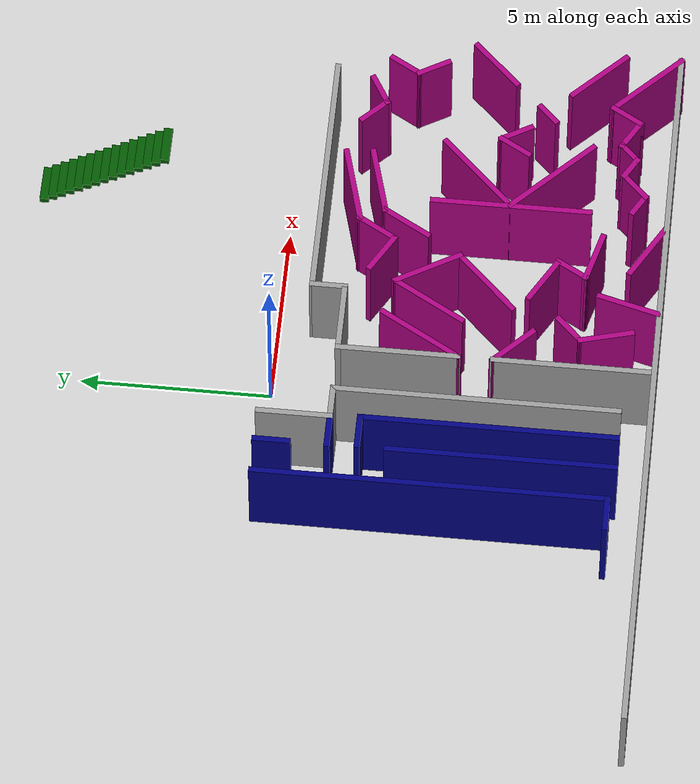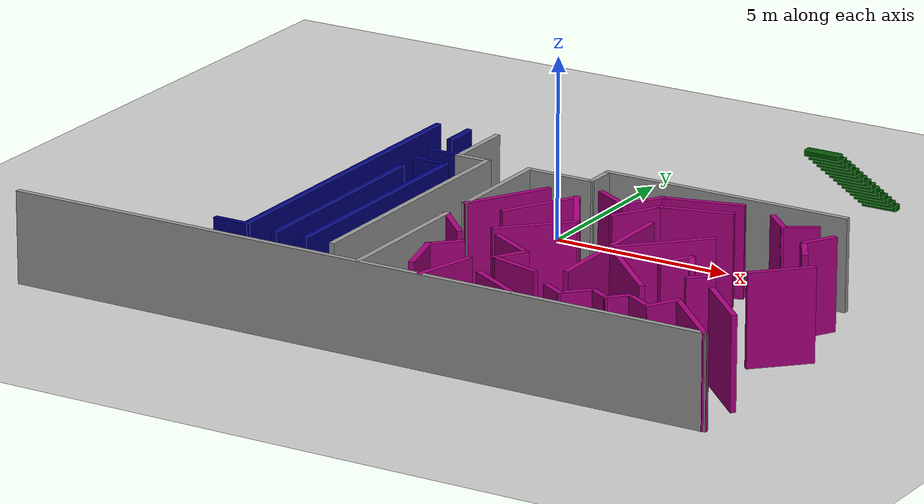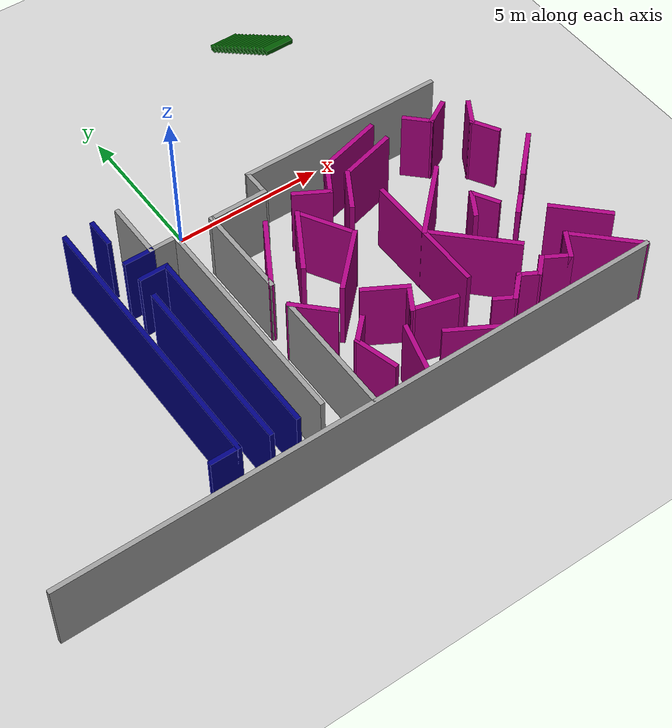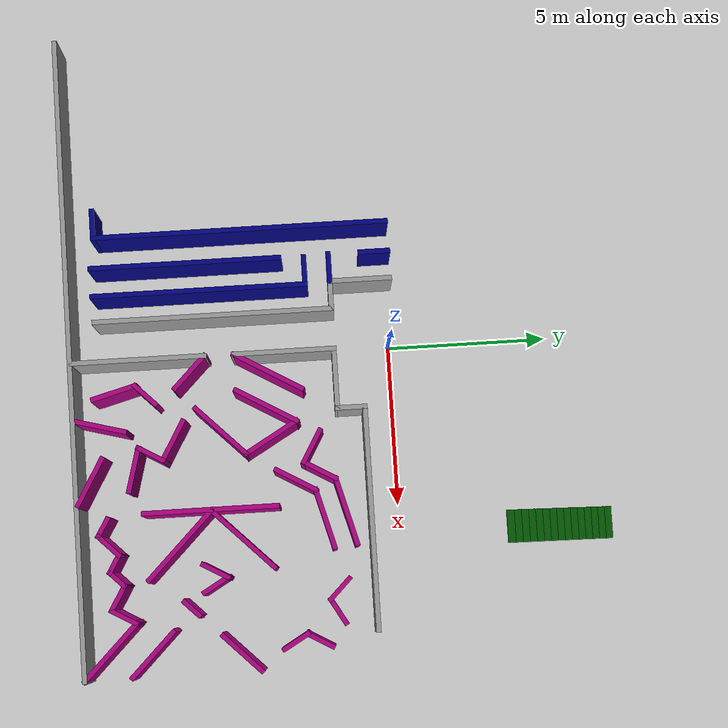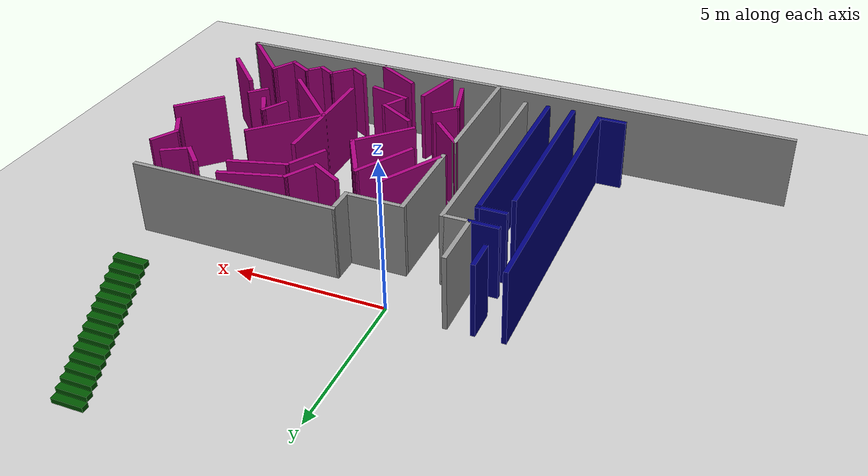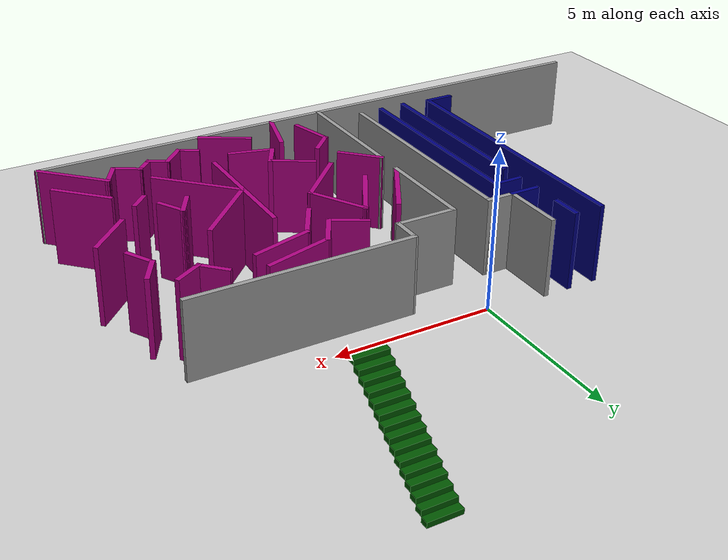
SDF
<sdf version="1.7">
 <world name="default">
  <model name="ground_plane">
   <static>1</static>
   <link name="link">
    <collision name="collision">
     <geometry><plane><normal>0 0 1</normal><size>100 100</size></plane></geometry>
     <surface><friction><ode><mu>100</mu><mu2>50</mu2></ode></friction></surface>
    </collision>
    <visual name="visual">
     <cast_shadows>0</cast_shadows>
     <geometry><plane><normal>0 0 1</normal><size>100 100</size></plane></geometry>
     <material>
      <script><uri>file://media/materials/scripts/gazebo.material</uri><name>Gazebo/Grey</name></script>
     </material>
    </visual>
   </link>
  </model>
  <model name="labyrinthe">
   <pose>-0.001061 -0.00174 0 0 -0 0</pose>
   <link name="Stairs_0">
    <visual name="Stairs_0_Visual_0">
     <pose>5.96244 6.62392 0.083333 0 -0 0</pose>
     <geometry><box><size>1 0.233333 0.166667</size></box></geometry>
     <material>
      <script><uri>file://media/materials/scripts/gazebo.material</uri><name>Gazebo/Grey</name></script>
      <ambient>0 0.333333 0 1</ambient>
     </material>
     <meta><layer>0</layer></meta>
    </visual>
    <collision name="Stairs_0_Collision_0">
     <geometry><box><size>1 0.233333 0.166667</size></box></geometry>
     <pose>5.96244 6.62392 0.083333 0 -0 0</pose>
    </collision>
    <visual name="Stairs_0_Visual_1">
     <pose>5.96244 6.39059 0.25 0 -0 0</pose>
     <geometry><box><size>1 0.233333 0.166667</size></box></geometry>
     <material>
      <script><uri>file://media/materials/scripts/gazebo.material</uri><name>Gazebo/Grey</name></script>
      <ambient>0 0.333333 0 1</ambient>
     </material>
     <meta><layer>0</layer></meta>
    </visual>
    <collision name="Stairs_0_Collision_1">
     <geometry><box><size>1 0.233333 0.166667</size></box></geometry>
     <pose>5.96244 6.39059 0.25 0 -0 0</pose>
    </collision>
    <visual name="Stairs_0_Visual_2">
     <pose>5.96244 6.15725 0.416667 0 -0 0</pose>
     <geometry><box><size>1 0.233333 0.166667</size></box></geometry>
     <material>
      <script><uri>file://media/materials/scripts/gazebo.material</uri><name>Gazebo/Grey</name></script>
      <ambient>0 0.333333 0 1</ambient>
     </material>
     <meta><layer>0</layer></meta>
    </visual>
    <collision name="Stairs_0_Collision_2">
     <geometry><box><size>1 0.233333 0.166667</size></box></geometry>
     <pose>5.96244 6.15725 0.416667 0 -0 0</pose>
    </collision>
    <visual name="Stairs_0_Visual_3">
     <pose>5.96244 5.92392 0.583333 0 -0 0</pose>
     <geometry><box><size>1 0.233333 0.166667</size></box></geometry>
     <material>
      <script><uri>file://media/materials/scripts/gazebo.material</uri><name>Gazebo/Grey</name></script>
      <ambient>0 0.333333 0 1</ambient>
     </material>
     <meta><layer>0</layer></meta>
    </visual>
    <collision name="Stairs_0_Collision_3">
     <geometry><box><size>1 0.233333 0.166667</size></box></geometry>
     <pose>5.96244 5.92392 0.583333 0 -0 0</pose>
    </collision>
    <visual name="Stairs_0_Visual_4">
     <pose>5.96244 5.69059 0.75 0 -0 0</pose>
     <geometry><box><size>1 0.233333 0.166667</size></box></geometry>
     <material>
      <script><uri>file://media/materials/scripts/gazebo.material</uri><name>Gazebo/Grey</name></script>
      <ambient>0 0.333333 0 1</ambient>
     </material>
     <meta><layer>0</layer></meta>
    </visual>
    <collision name="Stairs_0_Collision_4">
     <geometry><box><size>1 0.233333 0.166667</size></box></geometry>
     <pose>5.96244 5.69059 0.75 0 -0 0</pose>
    </collision>
    <visual name="Stairs_0_Visual_5">
     <pose>5.96244 5.45725 0.916667 0 -0 0</pose>
     <geometry><box><size>1 0.233333 0.166667</size></box></geometry>
     <material>
      <script><uri>file://media/materials/scripts/gazebo.material</uri><name>Gazebo/Grey</name></script>
      <ambient>0 0.333333 0 1</ambient>
     </material>
     <meta><layer>0</layer></meta>
    </visual>
    <collision name="Stairs_0_Collision_5">
     <geometry><box><size>1 0.233333 0.166667</size></box></geometry>
     <pose>5.96244 5.45725 0.916667 0 -0 0</pose>
    </collision>
    <visual name="Stairs_0_Visual_6">
     <pose>5.96244 5.22392 1.08333 0 -0 0</pose>
     <geometry><box><size>1 0.233333 0.166667</size></box></geometry>
     <material>
      <script><uri>file://media/materials/scripts/gazebo.material</uri><name>Gazebo/Grey</name></script>
      <ambient>0 0.333333 0 1</ambient>
     </material>
     <meta><layer>0</layer></meta>
    </visual>
    <collision name="Stairs_0_Collision_6">
     <geometry><box><size>1 0.233333 0.166667</size></box></geometry>
     <pose>5.96244 5.22392 1.08333 0 -0 0</pose>
    </collision>
    <visual name="Stairs_0_Visual_7">
     <pose>5.96244 4.99059 1.25 0 -0 0</pose>
     <geometry><box><size>1 0.233333 0.166667</size></box></geometry>
     <material>
      <script><uri>file://media/materials/scripts/gazebo.material</uri><name>Gazebo/Grey</name></script>
      <ambient>0 0.333333 0 1</ambient>
     </material>
     <meta><layer>0</layer></meta>
    </visual>
    <collision name="Stairs_0_Collision_7">
     <geometry><box><size>1 0.233333 0.166667</size></box></geometry>
     <pose>5.96244 4.99059 1.25 0 -0 0</pose>
    </collision>
    <visual name="Stairs_0_Visual_8">
     <pose>5.96244 4.75725 1.41667 0 -0 0</pose>
     <geometry><box><size>1 0.233333 0.166667</size></box></geometry>
     <material>
      <script><uri>file://media/materials/scripts/gazebo.material</uri><name>Gazebo/Grey</name></script>
      <ambient>0 0.333333 0 1</ambient>
     </material>
     <meta><layer>0</layer></meta>
    </visual>
    <collision name="Stairs_0_Collision_8">
     <geometry><box><size>1 0.233333 0.166667</size></box></geometry>
     <pose>5.96244 4.75725 1.41667 0 -0 0</pose>
    </collision>
    <visual name="Stairs_0_Visual_9">
     <pose>5.96244 4.52392 1.58333 0 -0 0</pose>
     <geometry><box><size>1 0.233333 0.166667</size></box></geometry>
     <material>
      <script><uri>file://media/materials/scripts/gazebo.material</uri><name>Gazebo/Grey</name></script>
      <ambient>0 0.333333 0 1</ambient>
     </material>
     <meta><layer>0</layer></meta>
    </visual>
    <collision name="Stairs_0_Collision_9">
     <geometry><box><size>1 0.233333 0.166667</size></box></geometry>
     <pose>5.96244 4.52392 1.58333 0 -0 0</pose>
    </collision>
    <visual name="Stairs_0_Visual_10">
     <pose>5.96244 4.29059 1.75 0 -0 0</pose>
     <geometry><box><size>1 0.233333 0.166667</size></box></geometry>
     <material>
      <script><uri>file://media/materials/scripts/gazebo.material</uri><name>Gazebo/Grey</name></script>
      <ambient>0 0.333333 0 1</ambient>
     </material>
     <meta><layer>0</layer></meta>
    </visual>
    <collision name="Stairs_0_Collision_10">
     <geometry><box><size>1 0.233333 0.166667</size></box></geometry>
     <pose>5.96244 4.29059 1.75 0 -0 0</pose>
    </collision>
    <visual name="Stairs_0_Visual_11">
     <pose>5.96244 4.05725 1.91667 0 -0 0</pose>
     <geometry><box><size>1 0.233333 0.166667</size></box></geometry>
     <material>
      <script><uri>file://media/materials/scripts/gazebo.material</uri><name>Gazebo/Grey</name></script>
      <ambient>0 0.333333 0 1</ambient>
     </material>
     <meta><layer>0</layer></meta>
    </visual>
    <collision name="Stairs_0_Collision_11">
     <geometry><box><size>1 0.233333 0.166667</size></box></geometry>
     <pose>5.96244 4.05725 1.91667 0 -0 0</pose>
    </collision>
    <visual name="Stairs_0_Visual_12">
     <pose>5.96244 3.82392 2.08333 0 -0 0</pose>
     <geometry><box><size>1 0.233333 0.166667</size></box></geometry>
     <material>
      <script><uri>file://media/materials/scripts/gazebo.material</uri><name>Gazebo/Grey</name></script>
      <ambient>0 0.333333 0 1</ambient>
     </material>
     <meta><layer>0</layer></meta>
    </visual>
    <collision name="Stairs_0_Collision_12">
     <geometry><box><size>1 0.233333 0.166667</size></box></geometry>
     <pose>5.96244 3.82392 2.08333 0 -0 0</pose>
    </collision>
    <visual name="Stairs_0_Visual_13">
     <pose>5.96244 3.59059 2.25 0 -0 0</pose>
     <geometry><box><size>1 0.233333 0.166667</size></box></geometry>
     <material>
      <script><uri>file://media/materials/scripts/gazebo.material</uri><name>Gazebo/Grey</name></script>
      <ambient>0 0.333333 0 1</ambient>
     </material>
     <meta><layer>0</layer></meta>
    </visual>
    <collision name="Stairs_0_Collision_13">
     <geometry><box><size>1 0.233333 0.166667</size></box></geometry>
     <pose>5.96244 3.59059 2.25 0 -0 0</pose>
    </collision>
    <visual name="Stairs_0_Visual_14">
     <pose>5.96244 3.35725 2.41667 0 -0 0</pose>
     <geometry><box><size>1 0.233333 0.166667</size></box></geometry>
     <material>
      <script><uri>file://media/materials/scripts/gazebo.material</uri><name>Gazebo/Grey</name></script>
      <ambient>0 0.333333 0 1</ambient>
     </material>
     <meta><layer>0</layer></meta>
    </visual>
    <collision name="Stairs_0_Collision_14">
     <geometry><box><size>1 0.233333 0.166667</size></box></geometry>
     <pose>5.96244 3.35725 2.41667 0 -0 0</pose>
    </collision>
   </link>
   <link name="Wall_124">
    <collision name="Wall_124_Collision">
     <geometry><box><size>1 0.15 2.5</size></box></geometry>
     <pose>0 0 1.25 0 -0 0</pose>
    </collision>
    <visual name="Wall_124_Visual">
     <pose>0 0 1.25 0 -0 0</pose>
     <geometry><box><size>1 0.15 2.5</size></box></geometry>
     <material>
      <script><uri>file://media/materials/scripts/gazebo.material</uri><name>Gazebo/Grey</name></script>
      <ambient>0 0 0.498039 1</ambient>
     </material>
     <meta><layer>0</layer></meta>
    </visual>
    <pose>-2.78376 -0.311268 0 0 -0 -1.5708</pose>
   </link>
   <link name="Wall_134">
    <collision name="Wall_134_Collision">
     <geometry><box><size>9.25 0.15 2.5</size></box></geometry>
     <pose>0 0 1.25 0 -0 0</pose>
    </collision>
    <visual name="Wall_134_Visual">
     <pose>0 0 1.25 0 -0 0</pose>
     <geometry><box><size>9.25 0.15 2.5</size></box></geometry>
     <material>
      <script><uri>file://media/materials/scripts/gazebo.material</uri><name>Gazebo/Grey</name></script>
      <ambient>0 0 0.498039 1</ambient>
     </material>
     <meta><layer>0</layer></meta>
    </visual>
    <pose>-3.71826 -4.45266 0 0 -0 -1.5708</pose>
   </link>
   <link name="Wall_138">
    <collision name="Wall_138_Collision">
     <geometry><box><size>1 0.15 2.5</size></box></geometry>
     <pose>0 0 1.25 0 -0 0</pose>
    </collision>
    <visual name="Wall_138_Visual">
     <pose>0 0 1.25 0 -0 0</pose>
     <geometry><box><size>1 0.15 2.5</size></box></geometry>
     <material>
      <script><uri>file://media/materials/scripts/gazebo.material</uri><name>Gazebo/Grey</name></script>
      <ambient>0 0 0.498039 1</ambient>
     </material>
     <meta><layer>0</layer></meta>
    </visual>
    <pose>-2.35877 -1.73627 0 0 -0 3.14159</pose>
   </link>
   <link name="Wall_140">
    <collision name="Wall_140_Collision">
     <geometry><box><size>1 0.15 2.5</size></box></geometry>
     <pose>0 0 1.25 0 -0 0</pose>
    </collision>
    <visual name="Wall_140_Visual">
     <pose>0 0 1.25 0 -0 0</pose>
     <geometry><box><size>1 0.15 2.5</size></box></geometry>
     <material>
      <script><uri>file://media/materials/scripts/gazebo.material</uri><name>Gazebo/Grey</name></script>
      <ambient>0 0 0.498039 1</ambient>
     </material>
     <meta><layer>0</layer></meta>
    </visual>
    <pose>-2.31461 -2.50799 0 0 -0 0</pose>
   </link>
   <link name="Wall_141">
    <collision name="Wall_141_Collision">
     <geometry><box><size>6.75 0.15 2.5</size></box></geometry>
     <pose>0 0 1.25 0 -0 0</pose>
    </collision>
    <visual name="Wall_141_Visual">
     <pose>0 0 1.25 0 -0 0</pose>
     <geometry><box><size>6.75 0.15 2.5</size></box></geometry>
     <material>
      <script><uri>file://media/materials/scripts/gazebo.material</uri><name>Gazebo/Grey</name></script>
      <ambient>0 0 0.498039 1</ambient>
     </material>
     <meta><layer>0</layer></meta>
    </visual>
    <pose>-1.88961 -5.80799 0 0 -0 -1.5708</pose>
   </link>
   <link name="Wall_143">
    <collision name="Wall_143_Collision">
     <geometry><box><size>6 0.15 2.5</size></box></geometry>
     <pose>0 0 1.25 0 -0 0</pose>
    </collision>
    <visual name="Wall_143_Visual">
     <pose>0 0 1.25 0 -0 0</pose>
     <geometry><box><size>6 0.15 2.5</size></box></geometry>
     <material>
      <script><uri>file://media/materials/scripts/gazebo.material</uri><name>Gazebo/Grey</name></script>
      <ambient>0 0 0.498039 1</ambient>
     </material>
     <meta><layer>0</layer></meta>
    </visual>
    <pose>-2.76606 -6.20004 0 0 -0 -1.5708</pose>
   </link>
   <link name="Wall_17">
    <collision name="Wall_17_Collision">
     <geometry><box><size>20 0.15 2.5</size></box></geometry>
     <pose>0 0 1.25 0 -0 0</pose>
    </collision>
    <visual name="Wall_17_Visual">
     <pose>0 0 1.25 0 -0 0</pose>
     <geometry><box><size>20 0.15 2.5</size></box></geometry>
     <material>
      <script><uri>file://media/materials/scripts/gazebo.material</uri><name>Gazebo/Grey</name></script>
      <ambient>0 0 0 1</ambient>
     </material>
     <meta><layer>0</layer></meta>
    </visual>
    <pose>-0.030043 -9.90947 0 0 -0 3.14159</pose>
   </link>
   <link name="Wall_171">
    <collision name="Wall_171_Collision">
     <geometry><box><size>1 0.15 2.5</size></box></geometry>
     <pose>0 0 1.25 0 -0 0</pose>
    </collision>
    <visual name="Wall_171_Visual">
     <pose>0 0 1.25 0 -0 0</pose>
     <geometry><box><size>1 0.15 2.5</size></box></geometry>
     <material>
      <script><uri>file://media/materials/scripts/gazebo.material</uri><name>Gazebo/Grey</name></script>
      <ambient>0 0 0.498039 1</ambient>
     </material>
     <meta><layer>0</layer></meta>
    </visual>
    <pose>-4.14326 -9.00266 0 0 -0 3.14159</pose>
   </link>
   <link name="Wall_199">
    <collision name="Wall_199_Collision">
     <geometry><box><size>3.25 0.15 2.5</size></box></geometry>
     <pose>0 0 1.25 0 -0 0</pose>
    </collision>
    <visual name="Wall_199_Visual">
     <pose>0 0 1.25 0 -0 0</pose>
     <geometry><box><size>3.25 0.15 2.5</size></box></geometry>
     <material>
      <script><uri>file://media/materials/scripts/gazebo.material</uri><name>Gazebo/Grey</name></script>
      <ambient>0 0 0 1</ambient>
     </material>
     <meta><layer>0</layer></meta>
    </visual>
    <pose>0.166235 -3.28624 0 0 -0 -1.5708</pose>
   </link>
   <link name="Wall_201">
    <collision name="Wall_201_Collision">
     <geometry><box><size>4.25 0.15 2.5</size></box></geometry>
     <pose>0 0 1.25 0 -0 0</pose>
    </collision>
    <visual name="Wall_201_Visual">
     <pose>0 0 1.25 0 -0 0</pose>
     <geometry><box><size>4.25 0.15 2.5</size></box></geometry>
     <material>
      <script><uri>file://media/materials/scripts/gazebo.material</uri><name>Gazebo/Grey</name></script>
      <ambient>0 0 0 1</ambient>
     </material>
     <meta><layer>0</layer></meta>
    </visual>
    <pose>0.156663 -7.79811 0 0 -0 -1.5708</pose>
   </link>
   <link name="Wall_203">
    <collision name="Wall_203_Collision">
     <geometry><box><size>2.5 0.15 2.5</size></box></geometry>
     <pose>0 0 1.25 0 -0 0</pose>
    </collision>
    <visual name="Wall_203_Visual">
     <pose>0 0 1.25 0 -0 0</pose>
     <geometry><box><size>2.5 0.15 2.5</size></box></geometry>
     <material>
      <script><uri>file://media/materials/scripts/gazebo.material</uri><name>Gazebo/Grey</name></script>
      <ambient>0.666667 0 0.498039 1</ambient>
     </material>
     <meta><layer>0</layer></meta>
    </visual>
    <pose>0.753735 -3.81866 0 0 -0 1.0472</pose>
   </link>
   <link name="Wall_205">
    <collision name="Wall_205_Collision">
     <geometry><box><size>1.5 0.15 2.5</size></box></geometry>
     <pose>0 0 1.25 0 -0 0</pose>
    </collision>
    <visual name="Wall_205_Visual">
     <pose>0 0 1.25 0 -0 0</pose>
     <geometry><box><size>1.5 0.15 2.5</size></box></geometry>
     <material>
      <script><uri>file://media/materials/scripts/gazebo.material</uri><name>Gazebo/Grey</name></script>
      <ambient>0.666667 0 0.498039 1</ambient>
     </material>
     <meta><layer>0</layer></meta>
    </visual>
    <pose>0.63396 -6.22541 0 0 -0 -0.785398</pose>
   </link>
   <link name="Wall_207">
    <collision name="Wall_207_Collision">
     <geometry><box><size>2.25 0.15 2.5</size></box></geometry>
     <pose>0 0 1.25 0 -0 0</pose>
    </collision>
    <visual name="Wall_207_Visual">
     <pose>0 0 1.25 0 -0 0</pose>
     <geometry><box><size>2.25 0.15 2.5</size></box></geometry>
     <material>
      <script><uri>file://media/materials/scripts/gazebo.material</uri><name>Gazebo/Grey</name></script>
      <ambient>0.666667 0 0.498039 1</ambient>
     </material>
     <meta><layer>0</layer></meta>
    </visual>
    <pose>1.80579 -3.92626 0 0 -0 1.0472</pose>
   </link>
   <link name="Wall_208">
    <collision name="Wall_208_Collision">
     <geometry><box><size>2 0.15 2.5</size></box></geometry>
     <pose>0 0 1.25 0 -0 0</pose>
    </collision>
    <visual name="Wall_208_Visual">
     <pose>0 0 1.25 0 -0 0</pose>
     <geometry><box><size>2 0.15 2.5</size></box></geometry>
     <material>
      <script><uri>file://media/materials/scripts/gazebo.material</uri><name>Gazebo/Grey</name></script>
      <ambient>0.666667 0 0.498039 1</ambient>
     </material>
     <meta><layer>0</layer></meta>
    </visual>
    <pose>2.79329 -3.81801 0 0 -0 -1.0472</pose>
   </link>
   <link name="Wall_209">
    <collision name="Wall_209_Collision">
     <geometry><box><size>2.25 0.15 2.5</size></box></geometry>
     <pose>0 0 1.25 0 -0 0</pose>
    </collision>
    <visual name="Wall_209_Visual">
     <pose>0 0 1.25 0 -0 0</pose>
     <geometry><box><size>2.25 0.15 2.5</size></box></geometry>
     <material>
      <script><uri>file://media/materials/scripts/gazebo.material</uri><name>Gazebo/Grey</name></script>
      <ambient>0.666667 0 0.498039 1</ambient>
     </material>
     <meta><layer>0</layer></meta>
    </visual>
    <pose>2.51333 -5.36154 0 0 -0 -2.35619</pose>
   </link>
   <link name="Wall_211">
    <collision name="Wall_211_Collision">
     <geometry><box><size>1.25 0.15 2.5</size></box></geometry>
     <pose>0 0 1.25 0 -0 0</pose>
    </collision>
    <visual name="Wall_211_Visual">
     <pose>0 0 1.25 0 -0 0</pose>
     <geometry><box><size>1.25 0.15 2.5</size></box></geometry>
     <material>
      <script><uri>file://media/materials/scripts/gazebo.material</uri><name>Gazebo/Grey</name></script>
      <ambient>0.666667 0 0.498039 1</ambient>
     </material>
     <meta><layer>0</layer></meta>
    </visual>
    <pose>3.14573 -2.59784 0 0 -0 -0.523599</pose>
   </link>
   <link name="Wall_212">
    <collision name="Wall_212_Collision">
     <geometry><box><size>1.25 0.15 2.5</size></box></geometry>
     <pose>0 0 1.25 0 -0 0</pose>
    </collision>
    <visual name="Wall_212_Visual">
     <pose>0 0 1.25 0 -0 0</pose>
     <geometry><box><size>1.25 0.15 2.5</size></box></geometry>
     <material>
      <script><uri>file://media/materials/scripts/gazebo.material</uri><name>Gazebo/Grey</name></script>
      <ambient>0.666667 0 0.498039 1</ambient>
     </material>
     <meta><layer>0</layer></meta>
    </visual>
    <pose>3.89704 -2.39652 0 0 -0 1.0472</pose>
   </link>
   <link name="Wall_213">
    <collision name="Wall_213_Collision">
     <geometry><box><size>2.25 0.15 2.5</size></box></geometry>
     <pose>0 0 1.25 0 -0 0</pose>
    </collision>
    <visual name="Wall_213_Visual">
     <pose>0 0 1.25 0 -0 0</pose>
     <geometry><box><size>2.25 0.15 2.5</size></box></geometry>
     <material>
      <script><uri>file://media/materials/scripts/gazebo.material</uri><name>Gazebo/Grey</name></script>
      <ambient>0.666667 0 0.498039 1</ambient>
     </material>
     <meta><layer>0</layer></meta>
    </visual>
    <pose>5.18626 -1.64845 0 0 -0 0.261799</pose>
   </link>
   <link name="Wall_215">
    <collision name="Wall_215_Collision">
     <geometry><box><size>1.5 0.15 2.5</size></box></geometry>
     <pose>0 0 1.25 0 -0 0</pose>
    </collision>
    <visual name="Wall_215_Visual">
     <pose>0 0 1.25 0 -0 0</pose>
     <geometry><box><size>1.5 0.15 2.5</size></box></geometry>
     <material>
      <script><uri>file://media/materials/scripts/gazebo.material</uri><name>Gazebo/Grey</name></script>
      <ambient>0.666667 0 0.498039 1</ambient>
     </material>
     <meta><layer>0</layer></meta>
    </visual>
    <pose>4.14426 -3.14012 0 0 -0 1.0472</pose>
   </link>
   <link name="Wall_216">
    <collision name="Wall_216_Collision">
     <geometry><box><size>2 0.15 2.5</size></box></geometry>
     <pose>0 0 1.25 0 -0 0</pose>
    </collision>
    <visual name="Wall_216_Visual">
     <pose>0 0 1.25 0 -0 0</pose>
     <geometry><box><size>2 0.15 2.5</size></box></geometry>
     <material>
      <script><uri>file://media/materials/scripts/gazebo.material</uri><name>Gazebo/Grey</name></script>
      <ambient>0.666667 0 0.498039 1</ambient>
     </material>
     <meta><layer>0</layer></meta>
    </visual>
    <pose>5.37524 -2.31615 0 0 -0 0.261799</pose>
   </link>
   <link name="Wall_218">
    <collision name="Wall_218_Collision">
     <geometry><box><size>1 0.15 2.5</size></box></geometry>
     <pose>0 0 1.25 0 -0 0</pose>
    </collision>
    <visual name="Wall_218_Visual">
     <pose>0 0 1.25 0 -0 0</pose>
     <geometry><box><size>1 0.15 2.5</size></box></geometry>
     <material>
      <script><uri>file://media/materials/scripts/gazebo.material</uri><name>Gazebo/Grey</name></script>
      <ambient>0.666667 0 0.498039 1</ambient>
     </material>
     <meta><layer>0</layer></meta>
    </visual>
    <pose>7.55901 -1.98856 0 0 -0 -0.785398</pose>
   </link>
   <link name="Wall_219">
    <collision name="Wall_219_Collision">
     <geometry><box><size>1 0.15 2.5</size></box></geometry>
     <pose>0 0 1.25 0 -0 0</pose>
    </collision>
    <visual name="Wall_219_Visual">
     <pose>0 0 1.25 0 -0 0</pose>
     <geometry><box><size>1 0.15 2.5</size></box></geometry>
     <material>
      <script><uri>file://media/materials/scripts/gazebo.material</uri><name>Gazebo/Grey</name></script>
      <ambient>0.666667 0 0.498039 1</ambient>
     </material>
     <meta><layer>0</layer></meta>
    </visual>
    <pose>8.22759 -2.07658 0 0 -0 0.523599</pose>
   </link>
   <link name="Wall_221">
    <collision name="Wall_221_Collision">
     <geometry><box><size>1 0.15 2.5</size></box></geometry>
     <pose>0 0 1.25 0 -0 0</pose>
    </collision>
    <visual name="Wall_221_Visual">
     <pose>0 0 1.25 0 -0 0</pose>
     <geometry><box><size>1 0.15 2.5</size></box></geometry>
     <material>
      <script><uri>file://media/materials/scripts/gazebo.material</uri><name>Gazebo/Grey</name></script>
      <ambient>0.666667 0 0.498039 1</ambient>
     </material>
     <meta><layer>0</layer></meta>
    </visual>
    <pose>9.06941 -2.67767 0 0 -0 -2.0944</pose>
   </link>
   <link name="Wall_222">
    <collision name="Wall_222_Collision">
     <geometry><box><size>1 0.15 2.5</size></box></geometry>
     <pose>0 0 1.25 0 -0 0</pose>
    </collision>
    <visual name="Wall_222_Visual">
     <pose>0 0 1.25 0 -0 0</pose>
     <geometry><box><size>1 0.15 2.5</size></box></geometry>
     <material>
      <script><uri>file://media/materials/scripts/gazebo.material</uri><name>Gazebo/Grey</name></script>
      <ambient>0.666667 0 0.498039 1</ambient>
     </material>
     <meta><layer>0</layer></meta>
    </visual>
    <pose>9.06941 -3.41379 0 0 -0 -1.0472</pose>
   </link>
   <link name="Wall_224">
    <collision name="Wall_224_Collision">
     <geometry><box><size>1.5 0.15 2.5</size></box></geometry>
     <pose>0 0 1.25 0 -0 0</pose>
    </collision>
    <visual name="Wall_224_Visual">
     <pose>0 0 1.25 0 -0 0</pose>
     <geometry><box><size>1.5 0.15 2.5</size></box></geometry>
     <material>
      <script><uri>file://media/materials/scripts/gazebo.material</uri><name>Gazebo/Grey</name></script>
      <ambient>0.666667 0 0.498039 1</ambient>
     </material>
     <meta><layer>0</layer></meta>
    </visual>
    <pose>2.72498 -6.85266 0 0 -0 -0.523599</pose>
   </link>
   <link name="Wall_225">
    <collision name="Wall_225_Collision">
     <geometry><box><size>1 0.15 2.5</size></box></geometry>
     <pose>0 0 1.25 0 -0 0</pose>
    </collision>
    <visual name="Wall_225_Visual">
     <pose>0 0 1.25 0 -0 0</pose>
     <geometry><box><size>1 0.15 2.5</size></box></geometry>
     <material>
      <script><uri>file://media/materials/scripts/gazebo.material</uri><name>Gazebo/Grey</name></script>
      <ambient>0.666667 0 0.498039 1</ambient>
     </material>
     <meta><layer>0</layer></meta>
    </visual>
    <pose>3.09705 -7.55822 0 0 -0 -2.0944</pose>
   </link>
   <link name="Wall_226">
    <collision name="Wall_226_Collision">
     <geometry><box><size>1.5 0.15 2.5</size></box></geometry>
     <pose>0 0 1.25 0 -0 0</pose>
    </collision>
    <visual name="Wall_226_Visual">
     <pose>0 0 1.25 0 -0 0</pose>
     <geometry><box><size>1.5 0.15 2.5</size></box></geometry>
     <material>
      <script><uri>file://media/materials/scripts/gazebo.material</uri><name>Gazebo/Grey</name></script>
      <ambient>0.666667 0 0.498039 1</ambient>
     </material>
     <meta><layer>0</layer></meta>
    </visual>
    <pose>3.53655 -8.10099 0 0 -0 -0.261799</pose>
   </link>
   <link name="Wall_228">
    <collision name="Wall_228_Collision">
     <geometry><box><size>1 0.15 2.5</size></box></geometry>
     <pose>0 0 1.25 0 -0 0</pose>
    </collision>
    <visual name="Wall_228_Visual">
     <pose>0 0 1.25 0 -0 0</pose>
     <geometry><box><size>1 0.15 2.5</size></box></geometry>
     <material>
      <script><uri>file://media/materials/scripts/gazebo.material</uri><name>Gazebo/Grey</name></script>
      <ambient>0.666667 0 0.498039 1</ambient>
     </material>
     <meta><layer>0</layer></meta>
    </visual>
    <pose>1.25799 -7.63563 0 0 -0 -2.35619</pose>
   </link>
   <link name="Wall_229">
    <collision name="Wall_229_Collision">
     <geometry><box><size>1.5 0.15 2.5</size></box></geometry>
     <pose>0 0 1.25 0 -0 0</pose>
    </collision>
    <visual name="Wall_229_Visual">
     <pose>0 0 1.25 0 -0 0</pose>
     <geometry><box><size>1.5 0.15 2.5</size></box></geometry>
     <material>
      <script><uri>file://media/materials/scripts/gazebo.material</uri><name>Gazebo/Grey</name></script>
      <ambient>0.666667 0 0.498039 1</ambient>
     </material>
     <meta><layer>0</layer></meta>
    </visual>
    <pose>1.13217 -8.58815 0 0 -0 -1.309</pose>
   </link>
   <link name="Wall_231">
    <collision name="Wall_231_Collision">
     <geometry><box><size>1.75 0.15 2.5</size></box></geometry>
     <pose>0 0 1.25 0 -0 0</pose>
    </collision>
    <visual name="Wall_231_Visual">
     <pose>0 0 1.25 0 -0 0</pose>
     <geometry><box><size>1.75 0.15 2.5</size></box></geometry>
     <material>
      <script><uri>file://media/materials/scripts/gazebo.material</uri><name>Gazebo/Grey</name></script>
      <ambient>0.666667 0 0.498039 1</ambient>
     </material>
     <meta><layer>0</layer></meta>
    </visual>
    <pose>2.14909 -9.10157 0 0 -0 1.309</pose>
   </link>
   <link name="Wall_233">
    <collision name="Wall_233_Collision">
     <geometry><box><size>1.75 0.15 2.5</size></box></geometry>
     <pose>0 0 1.25 0 -0 0</pose>
    </collision>
    <visual name="Wall_233_Visual">
     <pose>0 0 1.25 0 -0 0</pose>
     <geometry><box><size>1.75 0.15 2.5</size></box></geometry>
     <material>
      <script><uri>file://media/materials/scripts/gazebo.material</uri><name>Gazebo/Grey</name></script>
      <ambient>0.666667 0 0.498039 1</ambient>
     </material>
     <meta><layer>0</layer></meta>
    </visual>
    <pose>3.84132 -9.46109 0 0 -0 2.61799</pose>
   </link>
   <link name="Wall_235">
    <collision name="Wall_235_Collision">
     <geometry><box><size>2.5 0.15 2.5</size></box></geometry>
     <pose>0 0 1.25 0 -0 0</pose>
    </collision>
    <visual name="Wall_235_Visual">
     <pose>0 0 1.25 0 -0 0</pose>
     <geometry><box><size>2.5 0.15 2.5</size></box></geometry>
     <material>
      <script><uri>file://media/materials/scripts/gazebo.material</uri><name>Gazebo/Grey</name></script>
      <ambient>0.666667 0 0.498039 1</ambient>
     </material>
     <meta><layer>0</layer></meta>
    </visual>
    <pose>9.06411 -9.07862 0 0 -0 2.35619</pose>
   </link>
   <link name="Wall_236">
    <collision name="Wall_236_Collision">
     <geometry><box><size>1 0.15 2.5</size></box></geometry>
     <pose>0 0 1.25 0 -0 0</pose>
    </collision>
    <visual name="Wall_236_Visual">
     <pose>0 0 1.25 0 -0 0</pose>
     <geometry><box><size>1 0.15 2.5</size></box></geometry>
     <material>
      <script><uri>file://media/materials/scripts/gazebo.material</uri><name>Gazebo/Grey</name></script>
      <ambient>0.666667 0 0.498039 1</ambient>
     </material>
     <meta><layer>0</layer></meta>
    </visual>
    <pose>8.02076 -8.61583 0 0 -0 -2.0944</pose>
   </link>
   <link name="Wall_237">
    <collision name="Wall_237_Collision">
     <geometry><box><size>1 0.15 2.5</size></box></geometry>
     <pose>0 0 1.25 0 -0 0</pose>
    </collision>
    <visual name="Wall_237_Visual">
     <pose>0 0 1.25 0 -0 0</pose>
     <geometry><box><size>1 0.15 2.5</size></box></geometry>
     <material>
      <script><uri>file://media/materials/scripts/gazebo.material</uri><name>Gazebo/Grey</name></script>
      <ambient>0.666667 0 0.498039 1</ambient>
     </material>
     <meta><layer>0</layer></meta>
    </visual>
    <pose>7.4402 -8.77139 0 0 -0 2.61799</pose>
   </link>
   <link name="Wall_238">
    <collision name="Wall_238_Collision">
     <geometry><box><size>0.75 0.15 2.5</size></box></geometry>
     <pose>0 0 1.25 0 -0 0</pose>
    </collision>
    <visual name="Wall_238_Visual">
     <pose>0 0 1.25 0 -0 0</pose>
     <geometry><box><size>0.75 0.15 2.5</size></box></geometry>
     <material>
      <script><uri>file://media/materials/scripts/gazebo.material</uri><name>Gazebo/Grey</name></script>
      <ambient>0.666667 0 0.498039 1</ambient>
     </material>
     <meta><layer>0</layer></meta>
    </visual>
    <pose>6.86 -8.77102 0 0 -0 -2.35619</pose>
   </link>
   <link name="Wall_239">
    <collision name="Wall_239_Collision">
     <geometry><box><size>0.75 0.15 2.5</size></box></geometry>
     <pose>0 0 1.25 0 -0 0</pose>
    </collision>
    <visual name="Wall_239_Visual">
     <pose>0 0 1.25 0 -0 0</pose>
     <geometry><box><size>0.75 0.15 2.5</size></box></geometry>
     <material>
      <script><uri>file://media/materials/scripts/gazebo.material</uri><name>Gazebo/Grey</name></script>
      <ambient>0.666667 0 0.498039 1</ambient>
     </material>
     <meta><layer>0</layer></meta>
    </visual>
    <pose>6.38806 -8.83315 0 0 -0 2.61799</pose>
   </link>
   <link name="Wall_240">
    <collision name="Wall_240_Collision">
     <geometry><box><size>1 0.15 2.5</size></box></geometry>
     <pose>0 0 1.25 0 -0 0</pose>
    </collision>
    <visual name="Wall_240_Visual">
     <pose>0 0 1.25 0 -0 0</pose>
     <geometry><box><size>1 0.15 2.5</size></box></geometry>
     <material>
      <script><uri>file://media/materials/scripts/gazebo.material</uri><name>Gazebo/Grey</name></script>
      <ambient>0.666667 0 0.498039 1</ambient>
     </material>
     <meta><layer>0</layer></meta>
    </visual>
    <pose>5.82773 -8.98367 0 0 -0 -2.35619</pose>
   </link>
   <link name="Wall_241">
    <collision name="Wall_241_Collision">
     <geometry><box><size>0.75 0.15 2.5</size></box></geometry>
     <pose>0 0 1.25 0 -0 0</pose>
    </collision>
    <visual name="Wall_241_Visual">
     <pose>0 0 1.25 0 -0 0</pose>
     <geometry><box><size>0.75 0.15 2.5</size></box></geometry>
     <material>
      <script><uri>file://media/materials/scripts/gazebo.material</uri><name>Gazebo/Grey</name></script>
      <ambient>0.666667 0 0.498039 1</ambient>
     </material>
     <meta><layer>0</layer></meta>
    </visual>
    <pose>5.26741 -9.13419 0 0 -0 2.61799</pose>
   </link>
   <link name="Wall_243">
    <collision name="Wall_243_Collision">
     <geometry><box><size>1.75 0.15 2.5</size></box></geometry>
     <pose>0 0 1.25 0 -0 0</pose>
    </collision>
    <visual name="Wall_243_Visual">
     <pose>0 0 1.25 0 -0 0</pose>
     <geometry><box><size>1.75 0.15 2.5</size></box></geometry>
     <material>
      <script><uri>file://media/materials/scripts/gazebo.material</uri><name>Gazebo/Grey</name></script>
      <ambient>0.666667 0 0.498039 1</ambient>
     </material>
     <meta><layer>0</layer></meta>
    </visual>
    <pose>9.32458 -5.07065 0 0 -0 -2.35619</pose>
   </link>
   <link name="Wall_245">
    <collision name="Wall_245_Collision">
     <geometry><box><size>2 0.15 2.5</size></box></geometry>
     <pose>0 0 1.25 0 -0 0</pose>
    </collision>
    <visual name="Wall_245_Visual">
     <pose>0 0 1.25 0 -0 0</pose>
     <geometry><box><size>2 0.15 2.5</size></box></geometry>
     <material>
      <script><uri>file://media/materials/scripts/gazebo.material</uri><name>Gazebo/Grey</name></script>
      <ambient>0.666667 0 0.498039 1</ambient>
     </material>
     <meta><layer>0</layer></meta>
    </visual>
    <pose>9.20974 -7.79194 0 0 -0 2.35619</pose>
   </link>
   <link name="Wall_247">
    <collision name="Wall_247_Collision">
     <geometry><box><size>4.25 0.15 2.5</size></box></geometry>
     <pose>0 0 1.25 0 -0 0</pose>
    </collision>
    <visual name="Wall_247_Visual">
     <pose>0 0 1.25 0 -0 0</pose>
     <geometry><box><size>4.25 0.15 2.5</size></box></geometry>
     <material>
      <script><uri>file://media/materials/scripts/gazebo.material</uri><name>Gazebo/Grey</name></script>
      <ambient>0.666667 0 0.498039 1</ambient>
     </material>
     <meta><layer>0</layer></meta>
    </visual>
    <pose>4.90444 -5.81436 0 0 -0 -1.5708</pose>
   </link>
   <link name="Wall_249">
    <collision name="Wall_249_Collision">
     <geometry><box><size>2.75 0.15 2.5</size></box></geometry>
     <pose>0 0 1.25 0 -0 0</pose>
    </collision>
    <visual name="Wall_249_Visual">
     <pose>0 0 1.25 0 -0 0</pose>
     <geometry><box><size>2.75 0.15 2.5</size></box></geometry>
     <material>
      <script><uri>file://media/materials/scripts/gazebo.material</uri><name>Gazebo/Grey</name></script>
      <ambient>0.666667 0 0.498039 1</ambient>
     </material>
     <meta><layer>0</layer></meta>
    </visual>
    <pose>5.85013 -4.86855 0 0 -0 0.785398</pose>
   </link>
   <link name="Wall_251">
    <collision name="Wall_251_Collision">
     <geometry><box><size>3 0.15 2.5</size></box></geometry>
     <pose>0 0 1.25 0 -0 0</pose>
    </collision>
    <visual name="Wall_251_Visual">
     <pose>0 0 1.25 0 -0 0</pose>
     <geometry><box><size>3 0.15 2.5</size></box></geometry>
     <material>
      <script><uri>file://media/materials/scripts/gazebo.material</uri><name>Gazebo/Grey</name></script>
      <ambient>0.666667 0 0.498039 1</ambient>
     </material>
     <meta><layer>0</layer></meta>
    </visual>
    <pose>5.93851 -6.79542 0 0 -0 -0.785398</pose>
   </link>
   <link name="Wall_254">
    <collision name="Wall_254_Collision">
     <geometry><box><size>1 0.15 2.5</size></box></geometry>
     <pose>0 0 1.25 0 -0 0</pose>
    </collision>
    <visual name="Wall_254_Visual">
     <pose>0 0 1.25 0 -0 0</pose>
     <geometry><box><size>1 0.15 2.5</size></box></geometry>
     <material>
      <script><uri>file://media/materials/scripts/gazebo.material</uri><name>Gazebo/Grey</name></script>
      <ambient>0.666667 0 0.498039 1</ambient>
     </material>
     <meta><layer>0</layer></meta>
    </visual>
    <pose>6.78149 -5.7591 0 0 -0 -2.0944</pose>
   </link>
   <link name="Wall_256">
    <collision name="Wall_256_Collision">
     <geometry><box><size>1 0.15 2.5</size></box></geometry>
     <pose>0 0 1.25 0 -0 0</pose>
    </collision>
    <visual name="Wall_256_Visual">
     <pose>0 0 1.25 0 -0 0</pose>
     <geometry><box><size>1 0.15 2.5</size></box></geometry>
     <material>
      <script><uri>file://media/materials/scripts/gazebo.material</uri><name>Gazebo/Grey</name></script>
      <ambient>0.666667 0 0.498039 1</ambient>
     </material>
     <meta><layer>0</layer></meta>
    </visual>
    <pose>7.20649 -5.7591 0 0 -0 -1.0472</pose>
   </link>
   <link name="Wall_258">
    <collision name="Wall_258_Collision">
     <geometry><box><size>0.75 0.15 2.5</size></box></geometry>
     <pose>0 0 1.25 0 -0 0</pose>
    </collision>
    <visual name="Wall_258_Visual">
     <pose>0 0 1.25 0 -0 0</pose>
     <geometry><box><size>0.75 0.15 2.5</size></box></geometry>
     <material>
      <script><uri>file://media/materials/scripts/gazebo.material</uri><name>Gazebo/Grey</name></script>
      <ambient>0.666667 0 0.498039 1</ambient>
     </material>
     <meta><layer>0</layer></meta>
    </visual>
    <pose>7.87953 -6.54214 0 0 -0 -2.35619</pose>
   </link>
   <link name="Wall_32">
    <collision name="Wall_32_Collision">
     <geometry><box><size>1 0.15 2.5</size></box></geometry>
     <pose>0 0 1.25 0 -0 0</pose>
    </collision>
    <visual name="Wall_32_Visual">
     <pose>0 0 1.25 0 -0 0</pose>
     <geometry><box><size>1 0.15 2.5</size></box></geometry>
     <material>
      <script><uri>file://media/materials/scripts/gazebo.material</uri><name>Gazebo/Grey</name></script>
      <ambient>0 0 0 1</ambient>
     </material>
     <meta><layer>0</layer></meta>
    </visual>
    <pose>-1.50876 -1.73627 0 0 -0 0</pose>
   </link>
   <link name="Wall_38">
    <collision name="Wall_38_Collision">
     <geometry><box><size>2 0.15 2.5</size></box></geometry>
     <pose>0 0 1.25 0 -0 0</pose>
    </collision>
    <visual name="Wall_38_Visual">
     <pose>0 0 1.25 0 -0 0</pose>
     <geometry><box><size>2 0.15 2.5</size></box></geometry>
     <material>
      <script><uri>file://media/materials/scripts/gazebo.material</uri><name>Gazebo/Grey</name></script>
      <ambient>0 0 0 1</ambient>
     </material>
     <meta><layer>0</layer></meta>
    </visual>
    <pose>-1.93376 -0.811268 0 0 -0 1.5708</pose>
   </link>
   <link name="Wall_43">
    <collision name="Wall_43_Collision">
     <geometry><box><size>1 0.15 2.5</size></box></geometry>
     <pose>0 0 1.25 0 -0 0</pose>
    </collision>
    <visual name="Wall_43_Visual">
     <pose>0 0 1.25 0 -0 0</pose>
     <geometry><box><size>1 0.15 2.5</size></box></geometry>
     <material>
      <script><uri>file://media/materials/scripts/gazebo.material</uri><name>Gazebo/Grey</name></script>
      <ambient>0 0 0 1</ambient>
     </material>
     <meta><layer>0</layer></meta>
    </visual>
    <pose>2.01644 -1.31124 0 0 -0 1.57031</pose>
   </link>
   <link name="Wall_49">
    <collision name="Wall_49_Collision">
     <geometry><box><size>2 0.15 2.5</size></box></geometry>
     <pose>0 0 1.25 0 -0 0</pose>
    </collision>
    <visual name="Wall_49_Visual">
     <pose>0 0 1.25 0 -0 0</pose>
     <geometry><box><size>2 0.15 2.5</size></box></geometry>
     <material>
      <script><uri>file://media/materials/scripts/gazebo.material</uri><name>Gazebo/Grey</name></script>
      <ambient>0 0 0 1</ambient>
     </material>
     <meta><layer>0</layer></meta>
    </visual>
    <pose>1.09123 -1.73624 0 0 -0 3.14159</pose>
   </link>
   <link name="Wall_57">
    <collision name="Wall_57_Collision">
     <geometry><box><size>7.5 0.15 2.5</size></box></geometry>
     <pose>0 0 1.25 0 -0 0</pose>
    </collision>
    <visual name="Wall_57_Visual">
     <pose>0 0 1.25 0 -0 0</pose>
     <geometry><box><size>7.5 0.15 2.5</size></box></geometry>
     <material>
      <script><uri>file://media/materials/scripts/gazebo.material</uri><name>Gazebo/Grey</name></script>
      <ambient>0 0 0 1</ambient>
     </material>
     <meta><layer>0</layer></meta>
    </visual>
    <pose>-1.08377 -5.41127 0 0 -0 -1.5708</pose>
   </link>
   <link name="Wall_59">
    <collision name="Wall_59_Collision">
     <geometry><box><size>7 0.15 2.5</size></box></geometry>
     <pose>0 0 1.25 0 -0 0</pose>
    </collision>
    <visual name="Wall_59_Visual">
     <pose>0 0 1.25 0 -0 0</pose>
     <geometry><box><size>7 0.15 2.5</size></box></geometry>
     <material>
      <script><uri>file://media/materials/scripts/gazebo.material</uri><name>Gazebo/Grey</name></script>
      <ambient>0 0 0 1</ambient>
     </material>
     <meta><layer>0</layer></meta>
    </visual>
    <pose>5.44165 -0.886236 0 0 -0 0</pose>
   </link>
   <static>1</static>
  </model>
 </world>
</sdf>
